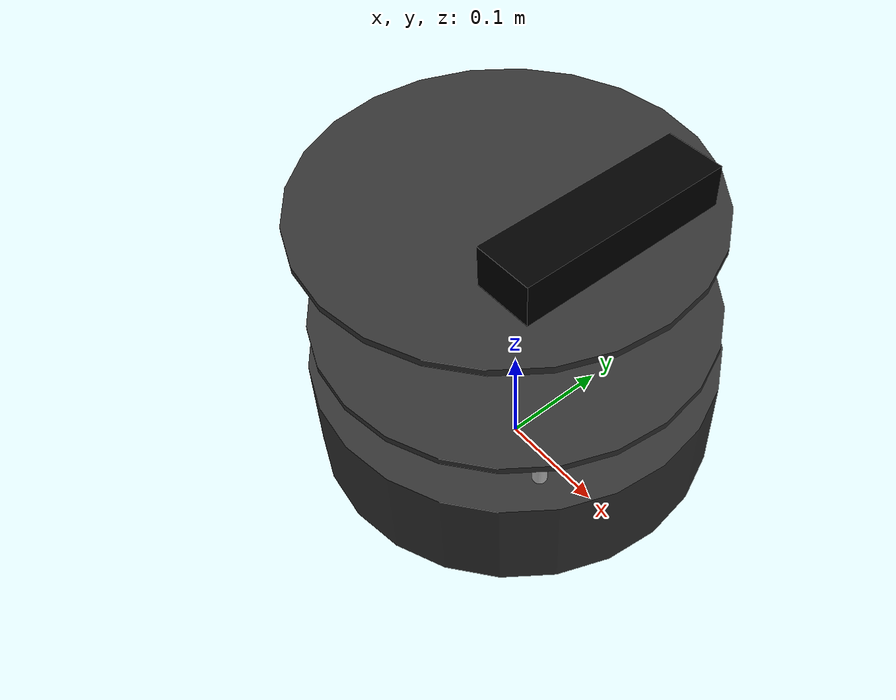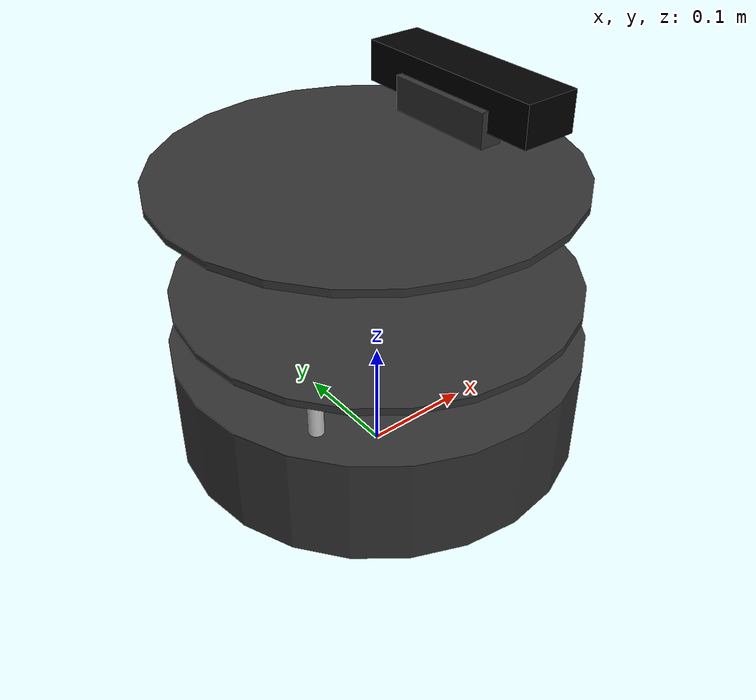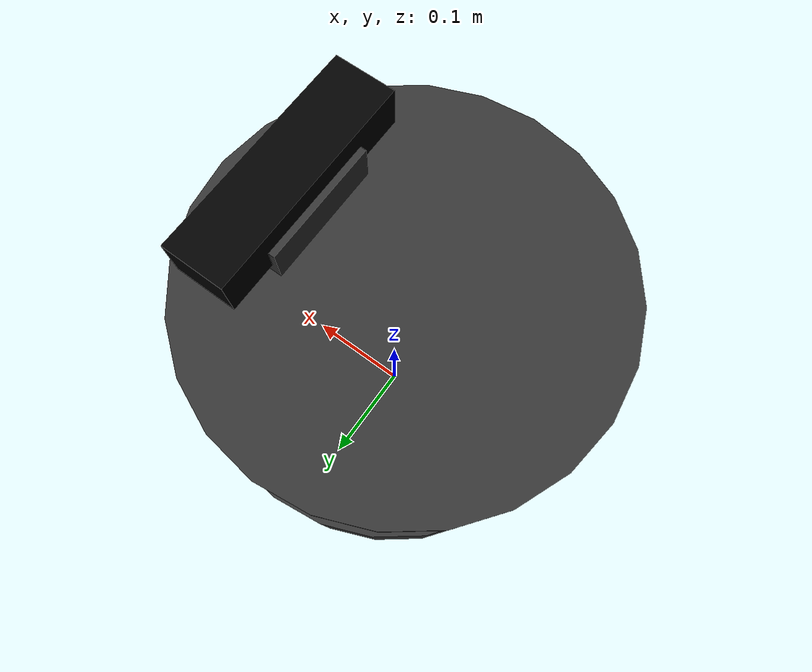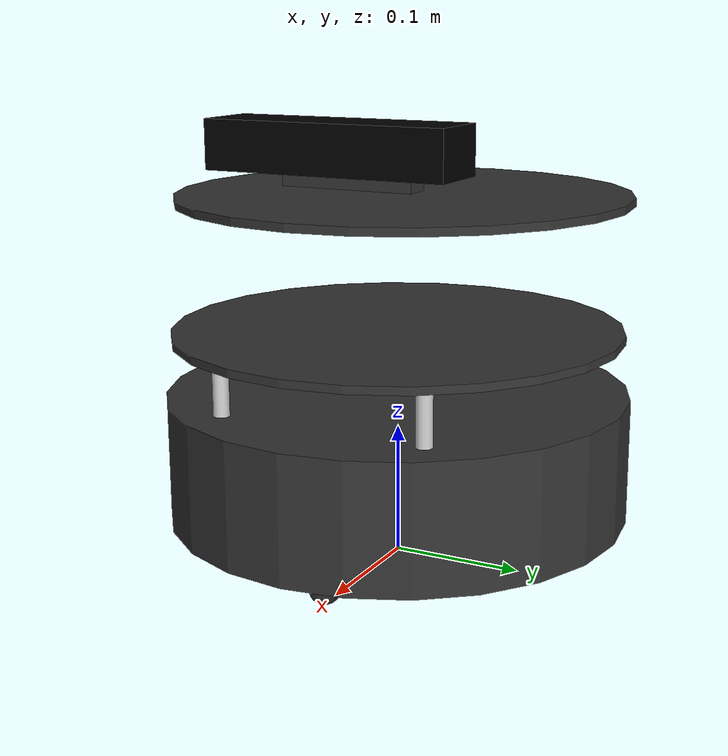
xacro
<?xml version="1.0"?>
<robot xmlns:xacro="http://ros.org/wiki/xacro" name="turtlebot2">

  <!-- Include component xacros -->
  <xacro:include filename="$(find turtlebot2_description)/urdf/common_properties.urdf.xacro"/>
  <xacro:include filename="$(find turtlebot2_description)/urdf/kobuki.urdf.xacro"/>
  <xacro:include filename="$(find turtlebot2_description)/urdf/sensors/xtion.urdf.xacro"/>

  <!-- Kobuki Base -->
  <xacro:kobuki/>

  <!-- TurtleBot 2 Plate Stack -->
  <!-- Bottom plate -->
  <link name="plate_bottom_link">
    <visual>
      <origin xyz="0 0 0" rpy="0 0 0"/>
      <geometry>
        <cylinder length="0.006" radius="0.170"/>
      </geometry>
      <material name="dark_grey"/>
    </visual>
    <collision>
      <origin xyz="0 0 0" rpy="0 0 0"/>
      <geometry>
        <cylinder length="0.006" radius="0.170"/>
      </geometry>
    </collision>
    <inertial>
      <mass value="0.5"/>
      <inertia ixx="0.01" ixy="0.0" ixz="0.0" iyy="0.01" iyz="0.0" izz="0.01"/>
    </inertial>
  </link>

  <joint name="plate_bottom_joint" type="fixed">
    <origin xyz="0.0 0.0 0.0408" rpy="0 0 0"/>
    <parent link="base_link"/>
    <child link="plate_bottom_link"/>
  </joint>

  <!-- Middle plate -->
  <link name="plate_middle_link">
    <visual>
      <origin xyz="0 0 0" rpy="0 0 0"/>
      <geometry>
        <cylinder length="0.006" radius="0.170"/>
      </geometry>
      <material name="dark_grey"/>
    </visual>
    <collision>
      <origin xyz="0 0 0" rpy="0 0 0"/>
      <geometry>
        <cylinder length="0.006" radius="0.170"/>
      </geometry>
    </collision>
    <inertial>
      <mass value="0.5"/>
      <inertia ixx="0.01" ixy="0.0" ixz="0.0" iyy="0.01" iyz="0.0" izz="0.01"/>
    </inertial>
  </link>

  <joint name="plate_middle_joint" type="fixed">
    <origin xyz="0.0 0.0 0.1408" rpy="0 0 0"/>
    <parent link="base_link"/>
    <child link="plate_middle_link"/>
  </joint>

  <!-- Top plate -->
  <link name="plate_top_link">
    <visual>
      <origin xyz="0 0 0" rpy="0 0 0"/>
      <geometry>
        <cylinder length="0.006" radius="0.170"/>
      </geometry>
      <material name="dark_grey"/>
    </visual>
    <collision>
      <origin xyz="0 0 0" rpy="0 0 0"/>
      <geometry>
        <cylinder length="0.006" radius="0.170"/>
      </geometry>
    </collision>
    <inertial>
      <mass value="0.5"/>
      <inertia ixx="0.01" ixy="0.0" ixz="0.0" iyy="0.01" iyz="0.0" izz="0.01"/>
    </inertial>
  </link>

  <joint name="plate_top_joint" type="fixed">
    <origin xyz="-0.01 0.0 0.2408" rpy="0 0 0"/>
    <parent link="base_link"/>
    <child link="plate_top_link"/>
  </joint>

  <!-- Standoffs (simplified as cylinders) -->
  <xacro:macro name="standoff" params="name parent x y z">
    <link name="${name}">
      <visual>
        <origin xyz="0 0 0" rpy="0 0 0"/>
        <geometry>
          <cylinder length="0.1" radius="0.006"/>
        </geometry>
        <material name="aluminium"/>
      </visual>
    </link>
    <joint name="${name}_joint" type="fixed">
      <origin xyz="${x} ${y} ${z}" rpy="0 0 0"/>
      <parent link="${parent}"/>
      <child link="${name}"/>
    </joint>
  </xacro:macro>

  <!-- Four standoffs between plates -->
  <xacro:standoff name="standoff_front_left" parent="plate_bottom_link" x="0.12" y="0.08" z="0.05"/>
  <xacro:standoff name="standoff_front_right" parent="plate_bottom_link" x="0.12" y="-0.08" z="0.05"/>
  <xacro:standoff name="standoff_rear_left" parent="plate_bottom_link" x="-0.12" y="0.08" z="0.05"/>
  <xacro:standoff name="standoff_rear_right" parent="plate_bottom_link" x="-0.12" y="-0.08" z="0.05"/>

  <!-- Astra Camera Mount -->
  <link name="camera_mount_link">
    <visual>
      <origin xyz="0 0 0" rpy="0 0 0"/>
      <geometry>
        <box size="0.02 0.10 0.03"/>
      </geometry>
      <material name="dark_grey"/>
    </visual>
  </link>

  <joint name="camera_mount_joint" type="fixed">
    <origin xyz="0.08 0.0 0.03" rpy="0 0 0"/>
    <parent link="plate_top_link"/>
    <child link="camera_mount_link"/>
  </joint>

  <!-- ASUS Xtion Pro Camera -->
  <xacro:sensor_xtion parent="camera_mount_link">
    <origin xyz="0.02 0.0 0.015" rpy="0 0 0"/>
  </xacro:sensor_xtion>

</robot>

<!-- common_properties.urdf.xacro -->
<robot xmlns:xacro="http://ros.org/wiki/xacro">

  <!-- Materials -->
  <material name="black">
    <color rgba="0.0 0.0 0.0 1.0"/>
  </material>

  <material name="dark_grey">
    <color rgba="0.2 0.2 0.2 1.0"/>
  </material>

  <material name="light_grey">
    <color rgba="0.6 0.6 0.6 1.0"/>
  </material>

  <material name="white">
    <color rgba="1.0 1.0 1.0 1.0"/>
  </material>

  <material name="orange">
    <color rgba="1.0 0.42 0.04 1.0"/>
  </material>

  <material name="aluminium">
    <color rgba="0.8 0.8 0.8 1.0"/>
  </material>

  <material name="plastic_black">
    <color rgba="0.1 0.1 0.1 1.0"/>
  </material>

  <!-- Common inertia macros -->
  <xacro:macro name="cylinder_inertia" params="m r h">
    <inertia ixx="${m*(3*r*r+h*h)/12}" ixy="0.0" ixz="0.0"
             iyy="${m*(3*r*r+h*h)/12}" iyz="0.0"
             izz="${m*r*r/2}"/>
  </xacro:macro>

  <xacro:macro name="box_inertia" params="m x y z">
    <inertia ixx="${m*(y*y+z*z)/12}" ixy="0.0" ixz="0.0"
             iyy="${m*(x*x+z*z)/12}" iyz="0.0"
             izz="${m*(x*x+y*y)/12}"/>
  </xacro:macro>

  <xacro:macro name="sphere_inertia" params="m r">
    <inertia ixx="${2*m*r*r/5}" ixy="0.0" ixz="0.0"
             iyy="${2*m*r*r/5}" iyz="0.0"
             izz="${2*m*r*r/5}"/>
  </xacro:macro>

</robot>

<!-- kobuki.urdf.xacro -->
<robot xmlns:xacro="http://ros.org/wiki/xacro">

  <!-- Kobuki Base Properties -->
  <xacro:property name="base_radius" value="0.175"/>
  <xacro:property name="base_height" value="0.095"/>
  <xacro:property name="wheel_radius" value="0.035"/>
  <xacro:property name="wheel_width" value="0.021"/>
  <xacro:property name="wheel_separation" value="0.230"/>
  <xacro:property name="caster_radius" value="0.012"/>

  <xacro:macro name="kobuki">

    <!-- Base footprint (ground projection) -->
    <link name="base_footprint"/>

    <!-- Base link -->
    <link name="base_link">
      <visual>
        <origin xyz="0 0 ${base_height/2}" rpy="0 0 0"/>
        <geometry>
          <cylinder length="${base_height}" radius="${base_radius}"/>
        </geometry>
        <material name="dark_grey"/>
      </visual>
      <collision>
        <origin xyz="0 0 ${base_height/2}" rpy="0 0 0"/>
        <geometry>
          <cylinder length="${base_height}" radius="${base_radius}"/>
        </geometry>
      </collision>
      <inertial>
        <origin xyz="0 0 ${base_height/2}" rpy="0 0 0"/>
        <mass value="2.4"/>
        <xacro:cylinder_inertia m="2.4" r="${base_radius}" h="${base_height}"/>
      </inertial>
    </link>

    <joint name="base_joint" type="fixed">
      <origin xyz="0 0 ${wheel_radius}" rpy="0 0 0"/>
      <parent link="base_footprint"/>
      <child link="base_link"/>
    </joint>

    <!-- Left Wheel -->
    <link name="wheel_left_link">
      <visual>
        <origin xyz="0 0 0" rpy="${pi/2} 0 0"/>
        <geometry>
          <cylinder length="${wheel_width}" radius="${wheel_radius}"/>
        </geometry>
        <material name="black"/>
      </visual>
      <collision>
        <origin xyz="0 0 0" rpy="${pi/2} 0 0"/>
        <geometry>
          <cylinder length="${wheel_width}" radius="${wheel_radius}"/>
        </geometry>
      </collision>
      <inertial>
        <origin xyz="0 0 0" rpy="${pi/2} 0 0"/>
        <mass value="0.1"/>
        <xacro:cylinder_inertia m="0.1" r="${wheel_radius}" h="${wheel_width}"/>
      </inertial>
    </link>

    <joint name="wheel_left_joint" type="continuous">
      <origin xyz="0.0 ${wheel_separation/2} 0.0" rpy="0 0 0"/>
      <parent link="base_link"/>
      <child link="wheel_left_link"/>
      <axis xyz="0 1 0"/>
    </joint>

    <!-- Right Wheel -->
    <link name="wheel_right_link">
      <visual>
        <origin xyz="0 0 0" rpy="${pi/2} 0 0"/>
        <geometry>
          <cylinder length="${wheel_width}" radius="${wheel_radius}"/>
        </geometry>
        <material name="black"/>
      </visual>
      <collision>
        <origin xyz="0 0 0" rpy="${pi/2} 0 0"/>
        <geometry>
          <cylinder length="${wheel_width}" radius="${wheel_radius}"/>
        </geometry>
      </collision>
      <inertial>
        <origin xyz="0 0 0" rpy="${pi/2} 0 0"/>
        <mass value="0.1"/>
        <xacro:cylinder_inertia m="0.1" r="${wheel_radius}" h="${wheel_width}"/>
      </inertial>
    </link>

    <joint name="wheel_right_joint" type="continuous">
      <origin xyz="0.0 ${-wheel_separation/2} 0.0" rpy="0 0 0"/>
      <parent link="base_link"/>
      <child link="wheel_right_link"/>
      <axis xyz="0 1 0"/>
    </joint>

    <!-- Front Caster -->
    <link name="caster_front_link">
      <visual>
        <origin xyz="0 0 0" rpy="0 0 0"/>
        <geometry>
          <sphere radius="${caster_radius}"/>
        </geometry>
        <material name="dark_grey"/>
      </visual>
      <collision>
        <origin xyz="0 0 0" rpy="0 0 0"/>
        <geometry>
          <sphere radius="${caster_radius}"/>
        </geometry>
      </collision>
      <inertial>
        <origin xyz="0 0 0" rpy="0 0 0"/>
        <mass value="0.05"/>
        <xacro:sphere_inertia m="0.05" r="${caster_radius}"/>
      </inertial>
    </link>

    <joint name="caster_front_joint" type="fixed">
      <origin xyz="0.115 0.0 ${caster_radius - wheel_radius}" rpy="0 0 0"/>
      <parent link="base_link"/>
      <child link="caster_front_link"/>
    </joint>

    <!-- Rear Caster -->
    <link name="caster_rear_link">
      <visual>
        <origin xyz="0 0 0" rpy="0 0 0"/>
        <geometry>
          <sphere radius="${caster_radius}"/>
        </geometry>
        <material name="dark_grey"/>
      </visual>
      <collision>
        <origin xyz="0 0 0" rpy="0 0 0"/>
        <geometry>
          <sphere radius="${caster_radius}"/>
        </geometry>
      </collision>
      <inertial>
        <origin xyz="0 0 0" rpy="0 0 0"/>
        <mass value="0.05"/>
        <xacro:sphere_inertia m="0.05" r="${caster_radius}"/>
      </inertial>
    </link>

    <joint name="caster_rear_joint" type="fixed">
      <origin xyz="-0.135 0.0 ${caster_radius - wheel_radius}" rpy="0 0 0"/>
      <parent link="base_link"/>
      <child link="caster_rear_link"/>
    </joint>

    <!-- Gyro Frame -->
    <link name="gyro_link"/>

    <joint name="gyro_joint" type="fixed">
      <origin xyz="0.056 0.0 0.020" rpy="0 0 0"/>
      <parent link="base_link"/>
      <child link="gyro_link"/>
    </joint>

    <!-- Cliff Sensors -->
    <link name="cliff_sensor_left_link"/>
    <joint name="cliff_sensor_left_joint" type="fixed">
      <origin xyz="0.08 0.13 0.01" rpy="0 ${pi/2} 0"/>
      <parent link="base_link"/>
      <child link="cliff_sensor_left_link"/>
    </joint>

    <link name="cliff_sensor_right_link"/>
    <joint name="cliff_sensor_right_joint" type="fixed">
      <origin xyz="0.08 -0.13 0.01" rpy="0 ${pi/2} 0"/>
      <parent link="base_link"/>
      <child link="cliff_sensor_right_link"/>
    </joint>

    <link name="cliff_sensor_front_link"/>
    <joint name="cliff_sensor_front_joint" type="fixed">
      <origin xyz="0.15 0.0 0.01" rpy="0 ${pi/2} 0"/>
      <parent link="base_link"/>
      <child link="cliff_sensor_front_link"/>
    </joint>

  </xacro:macro>

</robot>

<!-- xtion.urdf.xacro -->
<robot xmlns:xacro="http://ros.org/wiki/xacro">

  <!-- ASUS Xtion Pro Live Camera -->
  <xacro:macro name="sensor_xtion" params="parent *origin">

    <!-- Camera body -->
    <link name="camera_link">
      <visual>
        <origin xyz="0 0 0" rpy="0 0 0"/>
        <geometry>
          <box size="0.050 0.180 0.035"/>
        </geometry>
        <material name="black"/>
      </visual>
      <collision>
        <origin xyz="0 0 0" rpy="0 0 0"/>
        <geometry>
          <box size="0.050 0.180 0.035"/>
        </geometry>
      </collision>
      <inertial>
        <origin xyz="0 0 0" rpy="0 0 0"/>
        <mass value="0.3"/>
        <inertia ixx="0.001" ixy="0.0" ixz="0.0" iyy="0.001" iyz="0.0" izz="0.001"/>
      </inertial>
    </link>

    <joint name="camera_joint" type="fixed">
      <xacro:insert_block name="origin"/>
      <parent link="${parent}"/>
      <child link="camera_link"/>
    </joint>

    <!-- RGB Camera Frame -->
    <link name="camera_rgb_frame"/>

    <joint name="camera_rgb_joint" type="fixed">
      <origin xyz="0.0 0.0 0.0" rpy="0 0 0"/>
      <parent link="camera_link"/>
      <child link="camera_rgb_frame"/>
    </joint>

    <!-- RGB Optical Frame (Z-forward, X-right, Y-down) -->
    <link name="camera_rgb_optical_frame"/>

    <joint name="camera_rgb_optical_joint" type="fixed">
      <origin xyz="0 0 0" rpy="${-pi/2} 0 ${-pi/2}"/>
      <parent link="camera_rgb_frame"/>
      <child link="camera_rgb_optical_frame"/>
    </joint>

    <!-- Depth Camera Frame -->
    <link name="camera_depth_frame"/>

    <joint name="camera_depth_joint" type="fixed">
      <origin xyz="0.0 -0.025 0.0" rpy="0 0 0"/>
      <parent link="camera_link"/>
      <child link="camera_depth_frame"/>
    </joint>

    <!-- Depth Optical Frame (Z-forward, X-right, Y-down) -->
    <link name="camera_depth_optical_frame"/>

    <joint name="camera_depth_optical_joint" type="fixed">
      <origin xyz="0 0 0" rpy="${-pi/2} 0 ${-pi/2}"/>
      <parent link="camera_depth_frame"/>
      <child link="camera_depth_optical_frame"/>
    </joint>

  </xacro:macro>

</robot>
